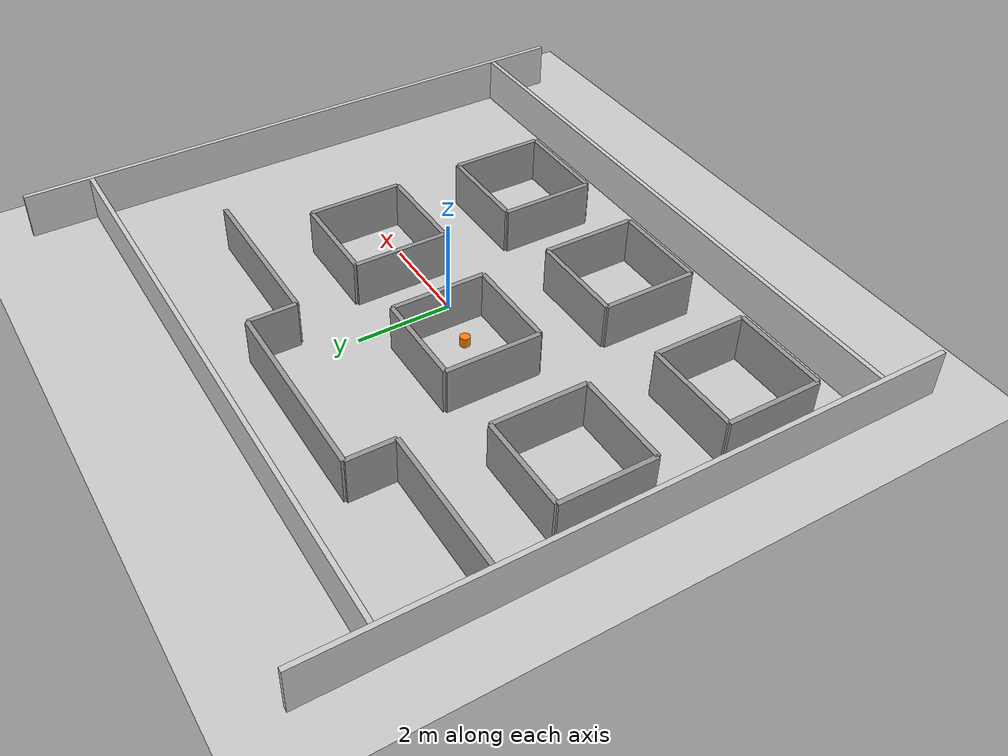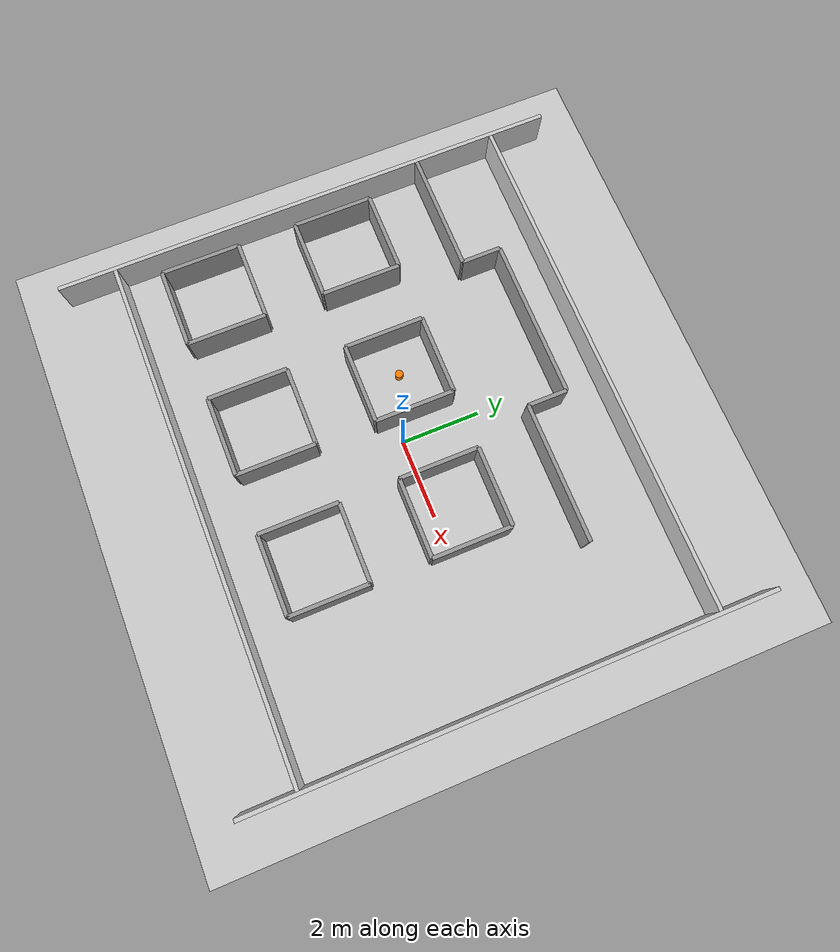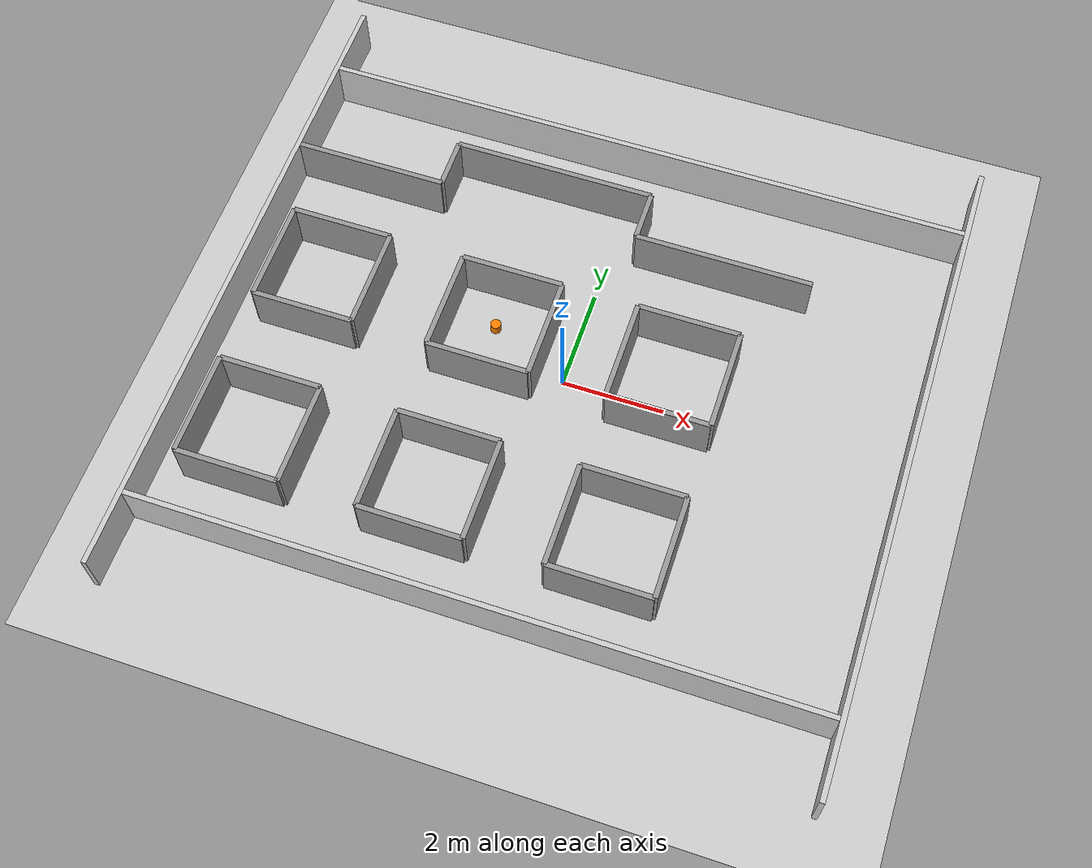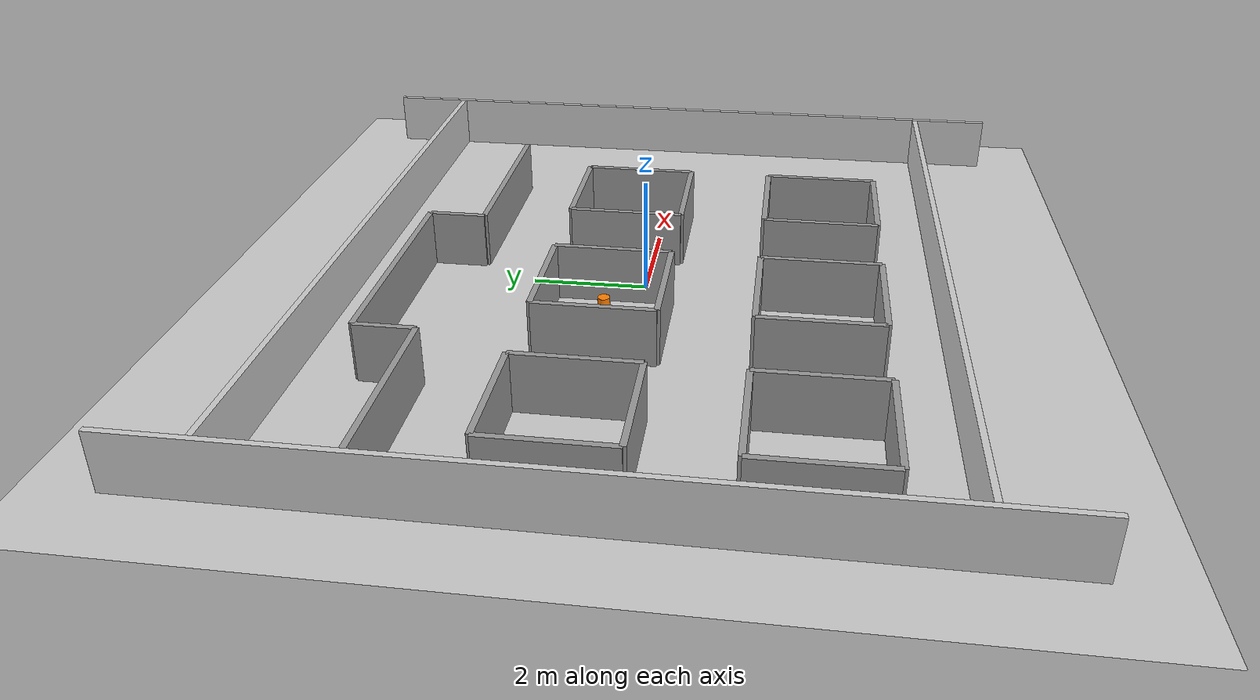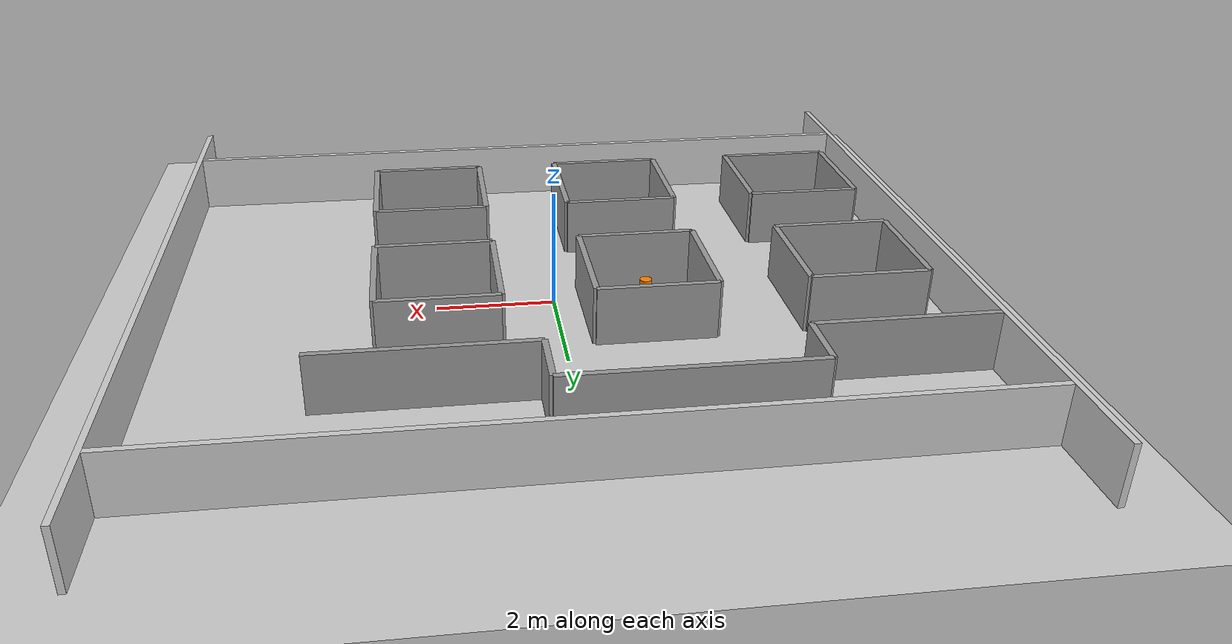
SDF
<?xml version="1.0"?>
<sdf version="1.6">
  <world name="obstacle_room">
    <physics type="ode">
      <max_step_size>0.001</max_step_size>
      <real_time_factor>5</real_time_factor>
      <real_time_update_rate>1000</real_time_update_rate>
    </physics>

    <!-- 조명 설정 -->
    <include>
      <uri>model://sun</uri>
    </include>

    <!-- 땅바닥 설정 -->
    <include>
      <uri>model://ground_plane</uri>
    </include>

    <!-- 월드 플러그인 -->
    <plugin name="gas_world_plugin" filename="libgazebo_ros_state.so">
      <ros>
        <namespace>/gazebo</namespace>
      </ros>
      <update_rate>1.0</update_rate>
    </plugin>

    <!-- 외부 벽 -->
    <model name="gas_obstacle_wall_left">
      <static>true</static>
      <pose>-6.55 0 0.5 0 0 0</pose>
      <link name="link">
        <collision name="collision">
          <geometry><box><size>0.1 13 1</size></box></geometry>
        </collision>
        <visual name="visual">
          <geometry><box><size>0.1 13 1</size></box></geometry>
          <material>
            <ambient>0.8 0.8 0.8 1</ambient>
            <diffuse>0.8 0.8 0.8 1</diffuse>
          </material>
        </visual>
      </link>
    </model>
    <model name="gas_obstacle_wall_right">
      <static>true</static>
      <pose>6.55 0 0.5 0 0 0</pose>
      <link name="link">
        <collision name="collision">
          <geometry><box><size>0.1 13 1</size></box></geometry>
        </collision>
        <visual name="visual">
          <geometry><box><size>0.1 13 1</size></box></geometry>
          <material>
            <ambient>0.8 0.8 0.8 1</ambient>
            <diffuse>0.8 0.8 0.8 1</diffuse>
          </material>
        </visual>
      </link>
    </model>
    <model name="gas_obstacle_wall_top">
      <static>true</static>
      <pose>0 5.05 0.5 0 0 0</pose>
      <link name="link">
        <collision name="collision">
          <geometry><box><size>13 0.1 1</size></box></geometry>
        </collision>
        <visual name="visual">
          <geometry><box><size>13 0.1 1</size></box></geometry>
          <material>
            <ambient>0.8 0.8 0.8 1</ambient>
            <diffuse>0.8 0.8 0.8 1</diffuse>
          </material>
        </visual>
      </link>
    </model>
    <model name="gas_obstacle_wall_bottom">
      <static>true</static>
      <pose>0 -5.05 0.5 0 0 0</pose>
      <link name="link">
        <collision name="collision">
          <geometry><box><size>13 0.1 1</size></box></geometry>
        </collision>
        <visual name="visual">
          <geometry><box><size>13 0.1 1</size></box></geometry>
          <material>
            <ambient>0.8 0.8 0.8 1</ambient>
            <diffuse>0.8 0.8 0.8 1</diffuse>
          </material>
        </visual>
      </link>
    </model>

    <!-- 사각형 장애물 6개 (2줄 x 3개, 벽 4개씩, 천장 없음) -->
    <model name="box_obstacle_row1_col1_left">
      <static>true</static>
      <pose>-6 -3 0.5 0 0 0</pose>
      <link name="link">
        <collision name="collision">
          <geometry><box><size>0.1 2 1</size></box></geometry>
        </collision>
        <visual name="visual">
          <geometry><box><size>0.1 2 1</size></box></geometry>
          <material><ambient>0.6 0.6 0.6 1</ambient><diffuse>0.6 0.6 0.6 1</diffuse></material>
        </visual>
      </link>
    </model>
    <model name="box_obstacle_row1_col1_right">
      <static>true</static>
      <pose>-4 -3 0.5 0 0 0</pose>
      <link name="link">
        <collision name="collision">
          <geometry><box><size>0.1 2 1</size></box></geometry>
        </collision>
        <visual name="visual">
          <geometry><box><size>0.1 2 1</size></box></geometry>
          <material><ambient>0.6 0.6 0.6 1</ambient><diffuse>0.6 0.6 0.6 1</diffuse></material>
        </visual>
      </link>
    </model>
    <model name="box_obstacle_row1_col1_top">
      <static>true</static>
      <pose>-5 -2 0.5 0 0 0</pose>
      <link name="link">
        <collision name="collision">
          <geometry><box><size>2 0.1 1</size></box></geometry>
        </collision>
        <visual name="visual">
          <geometry><box><size>2 0.1 1</size></box></geometry>
          <material><ambient>0.6 0.6 0.6 1</ambient><diffuse>0.6 0.6 0.6 1</diffuse></material>
        </visual>
      </link>
    </model>
    <model name="box_obstacle_row1_col1_bottom">
      <static>true</static>
      <pose>-5 -4 0.5 0 0 0</pose>
      <link name="link">
        <collision name="collision">
          <geometry><box><size>2 0.1 1</size></box></geometry>
        </collision>
        <visual name="visual">
          <geometry><box><size>2 0.1 1</size></box></geometry>
          <material><ambient>0.6 0.6 0.6 1</ambient><diffuse>0.6 0.6 0.6 1</diffuse></material>
        </visual>
      </link>
    </model>

    <model name="box_obstacle_row1_col2_left">
      <static>true</static>
      <pose>-2.5 -3 0.5 0 0 0</pose>
      <link name="link">
        <collision name="collision">
          <geometry><box><size>0.1 2 1</size></box></geometry>
        </collision>
        <visual name="visual">
          <geometry><box><size>0.1 2 1</size></box></geometry>
          <material><ambient>0.6 0.6 0.6 1</ambient><diffuse>0.6 0.6 0.6 1</diffuse></material>
        </visual>
      </link>
    </model>
    <model name="box_obstacle_row1_col2_right">
      <static>true</static>
      <pose>-0.5 -3 0.5 0 0 0</pose>
      <link name="link">
        <collision name="collision">
          <geometry><box><size>0.1 2 1</size></box></geometry>
        </collision>
        <visual name="visual">
          <geometry><box><size>0.1 2 1</size></box></geometry>
          <material><ambient>0.6 0.6 0.6 1</ambient><diffuse>0.6 0.6 0.6 1</diffuse></material>
        </visual>
      </link>
    </model>
    <model name="box_obstacle_row1_col2_top">
      <static>true</static>
      <pose>-1.5 -2 0.5 0 0 0</pose>
      <link name="link">
        <collision name="collision">
          <geometry><box><size>2 0.1 1</size></box></geometry>
        </collision>
        <visual name="visual">
          <geometry><box><size>2 0.1 1</size></box></geometry>
          <material><ambient>0.6 0.6 0.6 1</ambient><diffuse>0.6 0.6 0.6 1</diffuse></material>
        </visual>
      </link>
    </model>
    <model name="box_obstacle_row1_col2_bottom">
      <static>true</static>
      <pose>-1.5 -4 0.5 0 0 0</pose>
      <link name="link">
        <collision name="collision">
          <geometry><box><size>2 0.1 1</size></box></geometry>
        </collision>
        <visual name="visual">
          <geometry><box><size>2 0.1 1</size></box></geometry>
          <material><ambient>0.6 0.6 0.6 1</ambient><diffuse>0.6 0.6 0.6 1</diffuse></material>
        </visual>
      </link>
    </model>

    <model name="box_obstacle_row1_col3_left">
      <static>true</static>
      <pose>1 -3 0.5 0 0 0</pose>
      <link name="link">
        <collision name="collision">
          <geometry><box><size>0.1 2 1</size></box></geometry>
        </collision>
        <visual name="visual">
          <geometry><box><size>0.1 2 1</size></box></geometry>
          <material><ambient>0.6 0.6 0.6 1</ambient><diffuse>0.6 0.6 0.6 1</diffuse></material>
        </visual>
      </link>
    </model>
    <model name="box_obstacle_row1_col3_right">
      <static>true</static>
      <pose>3 -3 0.5 0 0 0</pose>
      <link name="link">
        <collision name="collision">
          <geometry><box><size>0.1 2 1</size></box></geometry>
        </collision>
        <visual name="visual">
          <geometry><box><size>0.1 2 1</size></box></geometry>
          <material><ambient>0.6 0.6 0.6 1</ambient><diffuse>0.6 0.6 0.6 1</diffuse></material>
        </visual>
      </link>
    </model>
    <model name="box_obstacle_row1_col3_top">
      <static>true</static>
      <pose>2 -2 0.5 0 0 0</pose>
      <link name="link">
        <collision name="collision">
          <geometry><box><size>2 0.1 1</size></box></geometry>
        </collision>
        <visual name="visual">
          <geometry><box><size>2 0.1 1</size></box></geometry>
          <material><ambient>0.6 0.6 0.6 1</ambient><diffuse>0.6 0.6 0.6 1</diffuse></material>
        </visual>
      </link>
    </model>
    <model name="box_obstacle_row1_col3_bottom">
      <static>true</static>
      <pose>2 -4 0.5 0 0 0</pose>
      <link name="link">
        <collision name="collision">
          <geometry><box><size>2 0.1 1</size></box></geometry>
        </collision>
        <visual name="visual">
          <geometry><box><size>2 0.1 1</size></box></geometry>
          <material><ambient>0.6 0.6 0.6 1</ambient><diffuse>0.6 0.6 0.6 1</diffuse></material>
        </visual>
      </link>
    </model>

    <model name="box_obstacle_row2_col1_left">
      <static>true</static>
      <pose>-6 0.5 0.5 0 0 0</pose>
      <link name="link">
        <collision name="collision">
          <geometry><box><size>0.1 2 1</size></box></geometry>
        </collision>
        <visual name="visual">
          <geometry><box><size>0.1 2 1</size></box></geometry>
          <material><ambient>0.6 0.6 0.6 1</ambient><diffuse>0.6 0.6 0.6 1</diffuse></material>
        </visual>
      </link>
    </model>
    <model name="box_obstacle_row2_col1_right">
      <static>true</static>
      <pose>-4 0.5 0.5 0 0 0</pose>
      <link name="link">
        <collision name="collision">
          <geometry><box><size>0.1 2 1</size></box></geometry>
        </collision>
        <visual name="visual">
          <geometry><box><size>0.1 2 1</size></box></geometry>
          <material><ambient>0.6 0.6 0.6 1</ambient><diffuse>0.6 0.6 0.6 1</diffuse></material>
        </visual>
      </link>
    </model>
    <model name="box_obstacle_row2_col1_top">
      <static>true</static>
      <pose>-5 1.5 0.5 0 0 0</pose>
      <link name="link">
        <collision name="collision">
          <geometry><box><size>2 0.1 1</size></box></geometry>
        </collision>
        <visual name="visual">
          <geometry><box><size>2 0.1 1</size></box></geometry>
          <material><ambient>0.6 0.6 0.6 1</ambient><diffuse>0.6 0.6 0.6 1</diffuse></material>
        </visual>
      </link>
    </model>
    <model name="box_obstacle_row2_col1_bottom">
      <static>true</static>
      <pose>-5 -0.5 0.5 0 0 0</pose>
      <link name="link">
        <collision name="collision">
          <geometry><box><size>2 0.1 1</size></box></geometry>
        </collision>
        <visual name="visual">
          <geometry><box><size>2 0.1 1</size></box></geometry>
          <material><ambient>0.6 0.6 0.6 1</ambient><diffuse>0.6 0.6 0.6 1</diffuse></material>
        </visual>
      </link>
    </model>

    <model name="box_obstacle_row2_col2_left">
      <static>true</static>
      <pose>-2.5 0.5 0.5 0 0 0</pose>
      <link name="link">
        <collision name="collision">
          <geometry><box><size>0.1 2 1</size></box></geometry>
        </collision>
        <visual name="visual">
          <geometry><box><size>0.1 2 1</size></box></geometry>
          <material><ambient>0.6 0.6 0.6 1</ambient><diffuse>0.6 0.6 0.6 1</diffuse></material>
        </visual>
      </link>
    </model>
    <model name="box_obstacle_row2_col2_right">
      <static>true</static>
      <pose>-0.5 0.5 0.5 0 0 0</pose>
      <link name="link">
        <collision name="collision">
          <geometry><box><size>0.1 2 1</size></box></geometry>
        </collision>
        <visual name="visual">
          <geometry><box><size>0.1 2 1</size></box></geometry>
          <material><ambient>0.6 0.6 0.6 1</ambient><diffuse>0.6 0.6 0.6 1</diffuse></material>
        </visual>
      </link>
    </model>
    <model name="box_obstacle_row2_col2_top">
      <static>true</static>
      <pose>-1.5 1.5 0.5 0 0 0</pose>
      <link name="link">
        <collision name="collision">
          <geometry><box><size>2 0.1 1</size></box></geometry>
        </collision>
        <visual name="visual">
          <geometry><box><size>2 0.1 1</size></box></geometry>
          <material><ambient>0.6 0.6 0.6 1</ambient><diffuse>0.6 0.6 0.6 1</diffuse></material>
        </visual>
      </link>
    </model>
    <model name="box_obstacle_row2_col2_bottom">
      <static>true</static>
      <pose>-1.5 -0.5 0.5 0 0 0</pose>
      <link name="link">
        <collision name="collision">
          <geometry><box><size>2 0.1 1</size></box></geometry>
        </collision>
        <visual name="visual">
          <geometry><box><size>2 0.1 1</size></box></geometry>
          <material><ambient>0.6 0.6 0.6 1</ambient><diffuse>0.6 0.6 0.6 1</diffuse></material>
        </visual>
      </link>
    </model>

    <model name="box_obstacle_row2_col3_left">
      <static>true</static>
      <pose>1 0.5 0.5 0 0 0</pose>
      <link name="link">
        <collision name="collision">
          <geometry><box><size>0.1 2 1</size></box></geometry>
        </collision>
        <visual name="visual">
          <geometry><box><size>0.1 2 1</size></box></geometry>
          <material><ambient>0.6 0.6 0.6 1</ambient><diffuse>0.6 0.6 0.6 1</diffuse></material>
        </visual>
      </link>
    </model>
    <model name="box_obstacle_row2_col3_right">
      <static>true</static>
      <pose>3 0.5 0.5 0 0 0</pose>
      <link name="link">
        <collision name="collision">
          <geometry><box><size>0.1 2 1</size></box></geometry>
        </collision>
        <visual name="visual">
          <geometry><box><size>0.1 2 1</size></box></geometry>
          <material><ambient>0.6 0.6 0.6 1</ambient><diffuse>0.6 0.6 0.6 1</diffuse></material>
        </visual>
      </link>
    </model>
    <model name="box_obstacle_row2_col3_top">
      <static>true</static>
      <pose>2 1.5 0.5 0 0 0</pose>
      <link name="link">
        <collision name="collision">
          <geometry><box><size>2 0.1 1</size></box></geometry>
        </collision>
        <visual name="visual">
          <geometry><box><size>2 0.1 1</size></box></geometry>
          <material><ambient>0.6 0.6 0.6 1</ambient><diffuse>0.6 0.6 0.6 1</diffuse></material>
        </visual>
      </link>
    </model>
    <model name="box_obstacle_row2_col3_bottom">
      <static>true</static>
      <pose>2 -0.5 0.5 0 0 0</pose>
      <link name="link">
        <collision name="collision">
          <geometry><box><size>2 0.1 1</size></box></geometry>
        </collision>
        <visual name="visual">
          <geometry><box><size>2 0.1 1</size></box></geometry>
          <material><ambient>0.6 0.6 0.6 1</ambient><diffuse>0.6 0.6 0.6 1</diffuse></material>
        </visual>
      </link>
    </model>

    <!-- ㄹ자 벽 (좌측 직선 - 위로 꺾임 - 중간 직선 - 아래로 꺾임 - 우측 직선) -->
    <model name="rieul_wall_left">
      <static>true</static>
      <pose>-5 3 0.5 0 0 0</pose>
      <link name="link">
        <collision name="collision">
          <geometry><box><size>3 0.1 1</size></box></geometry>
        </collision>
        <visual name="visual">
          <geometry><box><size>3 0.1 1</size></box></geometry>
          <material><ambient>0.6 0.6 0.6 1</ambient><diffuse>0.6 0.6 0.6 1</diffuse></material>
        </visual>
      </link>
    </model>
    <model name="rieul_wall_up1">
      <static>true</static>
      <pose>-3.5 3.5 0.5 0 0 0</pose>
      <link name="link">
        <collision name="collision">
          <geometry><box><size>0.1 1 1</size></box></geometry>
        </collision>
        <visual name="visual">
          <geometry><box><size>0.1 1 1</size></box></geometry>
          <material><ambient>0.6 0.6 0.6 1</ambient><diffuse>0.6 0.6 0.6 1</diffuse></material>
        </visual>
      </link>
    </model>
    <model name="rieul_wall_middle">
      <static>true</static>
      <pose>-1.5 4 0.5 0 0 0</pose>
      <link name="link">
        <collision name="collision">
          <geometry><box><size>4 0.1 1</size></box></geometry>
        </collision>
        <visual name="visual">
          <geometry><box><size>4 0.1 1</size></box></geometry>
          <material><ambient>0.6 0.6 0.6 1</ambient><diffuse>0.6 0.6 0.6 1</diffuse></material>
        </visual>
      </link>
    </model>
    <model name="rieul_wall_down1">
      <static>true</static>
      <pose>0.5 3.5 0.5 0 0 0</pose>
      <link name="link">
        <collision name="collision">
          <geometry><box><size>0.1 1 1</size></box></geometry>
        </collision>
        <visual name="visual">
          <geometry><box><size>0.1 1 1</size></box></geometry>
          <material><ambient>0.6 0.6 0.6 1</ambient><diffuse>0.6 0.6 0.6 1</diffuse></material>
        </visual>
      </link>
    </model>
    <model name="rieul_wall_right">
      <static>true</static>
      <pose>2.25 3 0.5 0 0 0</pose>
      <link name="link">
        <collision name="collision">
          <geometry><box><size>3.5 0.1 1</size></box></geometry>
        </collision>
        <visual name="visual">
          <geometry><box><size>3.5 0.1 1</size></box></geometry>
          <material><ambient>0.6 0.6 0.6 1</ambient><diffuse>0.6 0.6 0.6 1</diffuse></material>
        </visual>
      </link>
    </model>

    <!-- 가스 소스 모델 -->
    <model name="gas_source">
      <static>true</static>
      <pose>-1.5 0.5 0.5 0 0 0</pose>
      <link name="link">
        <collision name="collision">
          <geometry>
            <cylinder>
              <radius>0.1</radius>
              <length>0.2</length>
            </cylinder>
          </geometry>
        </collision>
        <visual name="visual">
          <geometry>
            <cylinder>
              <radius>0.1</radius>
              <length>0.2</length>
            </cylinder>
          </geometry>
          <material>
            <ambient>1 0.5 0 1</ambient>
            <diffuse>1 0.5 0 1</diffuse>
            <emissive>1 0.5 0 1</emissive>
          </material>
        </visual>
      </link>
      <plugin name="gas_source_plugin" filename="libgas_source_plugin.so">
        <initial_concentration>500.0</initial_concentration>
        <radius>0.1</radius>
      </plugin>
    </model>
  </world>
</sdf>
